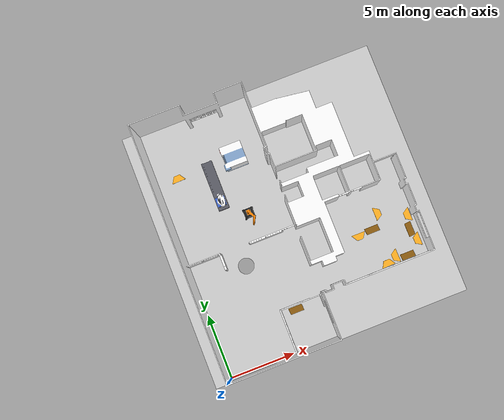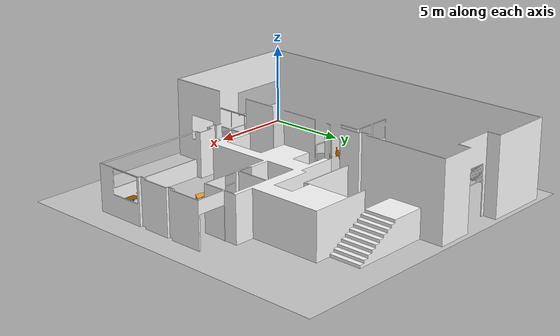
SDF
<?xml version="1.0" ?>
<sdf version="1.6">

    <world name="default">
        <include>
        	<uri>model://sun</uri>
        </include>

        <include>
		<static>true</static>
        	<uri>model://labfabex_ground</uri>
        </include>
        <include>
		<static>true</static>
        	<uri>model://labfabex</uri>
        </include>

	<model name="leadwell">
		<include>
			<static>true</static>
			<uri>model://leadwell</uri>
			<pose>4.4 9.8 0.0 0.0 0.0 1.570796</pose>
		</include>
	</model>

	<model name="scara">
		<include>
			<static>true</static>
			<uri>model://scara</uri>
			<pose>5.7 11.0 0.0 0.0 0.0 1.570796</pose>
		</include>
	</model>
	<model name="motoman">
		<include>
			<static>true</static>
			<uri>model://motoman</uri>
			<pose>4.4 10.5 0.0 0.0 0.0 1.570796</pose>
		</include>
	</model>
	<model name="muebles">
		<include>
			<static>true</static>
			<uri>model://muebles</uri>
			<pose>10.75 7.25 0.0 0.0 0.0 1.570796</pose>
		</include>
	</model>

    <physics name='default_physics' default='0' type='ode'>
      <ode>
        <solver>
          <type>quick</type>
          <iters>500</iters>
          <friction_model>cone_model</friction_model>
          <sor>1.3</sor>
          <use_dynamic_moi_rescaling>0</use_dynamic_moi_rescaling>
        </solver>
      </ode>
      <max_step_size>0.0125</max_step_size>
      <real_time_factor>1</real_time_factor>
      <real_time_update_rate>80</real_time_update_rate>
    </physics>

    </world>
</sdf>

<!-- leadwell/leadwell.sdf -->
<sdf version='1.4'>
  <model name="leadwell">
    <static>true</static>
    <link name='base_link'>
      <pose>0 0 0 0 0 0</pose>
      <collision name='collision'>
        <geometry>
          <mesh>
            <uri>model://leadwell/meshes/centromecan.dae</uri>
          </mesh>
        </geometry>
      </collision>
      <visual name='visual'>
        <geometry>
          <mesh>
            <uri>model://leadwell/meshes/centromecan.dae</uri>
          </mesh>
        </geometry>
      </visual>
    </link>
  </model>
</sdf>

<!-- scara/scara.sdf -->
<sdf version='1.4'>

  <model name="scara">
    <static>true</static>
    <link name='base_link'>
      <pose>0 0 0.5 0 0 0</pose>
      <collision name='collision'>
        <geometry>
          <mesh>
            <uri>model://scara/meshes/scara.dae</uri>
          </mesh>
        </geometry>
      </collision>
      <visual name='visual'>
        <geometry>
          <mesh>
            <uri>model://scara/meshes/scara.dae</uri>
          </mesh>
        </geometry>
      </visual>
    </link>
  </model>
</sdf>

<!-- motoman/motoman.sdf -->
<sdf version='1.4'>

  <model name="motoman">
    <static>true</static>
    <link name='base_link'>
      <pose>0 0 0.5 0 0 0</pose>
      <collision name='collision'>
        <geometry>
          <mesh>
            <uri>model://motoman/meshes/motoman.dae</uri>
          </mesh>
        </geometry>
      </collision>
      <visual name='visual'>
        <geometry>
          <mesh>
            <uri>model://motoman/meshes/motoman.dae</uri>
          </mesh>
        </geometry>
      </visual>
    </link>
  </model>
</sdf>

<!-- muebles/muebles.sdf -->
<sdf version='1.6'>
  <model name='muebles'>
    <static> true </static>
    <link name='mesa_circular'>
      <pose frame=''>3.3 8.5 0 0 -0 0</pose>
      <visual name='visual'>
        <geometry>
          <mesh>
            <uri>model://muebles/meshes/mesacircular.dae</uri>
          </mesh>
        </geometry>
        <material>
          <lighting>1</lighting>
          <script>
            <uri>file://media/materials/scripts/gazebo.material</uri>
            <name>Gazebo/Grey</name>
          </script>
        </material>
      </visual>
      <collision name='collision'>
        <geometry>
          <mesh>
            <uri>model://muebles/meshes/mesacuadrada.dae</uri>
          </mesh>
        </geometry>
      </collision>
    </link>
    <link name='mesa_cuadrada_1'>
      <pose frame=''>-4.2 4.18832 0 0 -0 0</pose>
      <visual name='visual'>
        <geometry>
          <mesh>
            <uri>model://muebles/meshes/mesacuadrada.dae</uri>
          </mesh>
        </geometry>
      </visual>
      <collision name='collision'>
        <geometry>
          <mesh>
            <uri>model://muebles/meshes/mesacuadrada.dae</uri>
          </mesh>
        </geometry>
      </collision>
    </link>
    <link name='mesa_caudrada_2'>
      <pose frame=''>-0.7 -3.4 0 0 -0 0</pose>
      <visual name='visual'>
        <geometry>
          <mesh>
            <uri>model://muebles/meshes/mesacuadrada.dae</uri>
          </mesh>
        </geometry>
      </visual>
      <collision name='collision'>
        <geometry>
          <mesh>
            <uri>model://muebles/meshes/mesacuadrada.dae</uri>
          </mesh>
        </geometry>
      </collision>
    </link>
    <link name='mesa_caudrada_3'>
      <pose frame=''>-3.5 -5.2 0 0 -0 0</pose>
      <visual name='visual'>
        <geometry>
          <mesh>
            <uri>model://muebles/meshes/mesacuadrada.dae</uri>
          </mesh>
        </geometry>
      </visual>
      <collision name='collision'>
        <geometry>
          <mesh>
            <uri>model://muebles/meshes/mesacuadrada.dae</uri>
          </mesh>
        </geometry>
      </collision>
    </link>
    <link name='mesa_caudrada_4'>
      <pose frame=''>-1.91014 -5.94288 0 0 0 -1.56325</pose>
      <visual name='visual'>
        <geometry>
          <mesh>
            <uri>model://muebles/meshes/mesacuadrada.dae</uri>
          </mesh>
        </geometry>
      </visual>
      <collision name='collision'>
        <geometry>
          <mesh>
            <uri>model://muebles/meshes/mesacuadrada.dae</uri>
          </mesh>
        </geometry>
      </collision>
    </link>
    <link name='mesa_triangular'>
      <pose frame=''>-2.51014 -5.94288 0 0 0 -1.56325</pose>
      <visual name='visual'>
        <geometry>
          <mesh>
            <uri>model://muebles/meshes/mesatriangular.dae</uri>
          </mesh>
        </geometry>
      </visual>
      <collision name='collision'>
        <geometry>
          <mesh>
            <uri>model://muebles/meshes/mesatriangular.dae</uri>
          </mesh>
        </geometry>
      </collision>
    </link>
    <link name='mesa_triangular_1'>
      <pose frame=''>-1.05359 -1.94449 0 0 -0 0</pose>
      <visual name='visual'>
        <geometry>
          <mesh>
            <uri>model://muebles/meshes/mesatriangular.dae</uri>
          </mesh>
        </geometry>
      </visual>
      <collision name='collision'>
        <geometry>
          <mesh>
            <uri>model://muebles/meshes/mesatriangular.dae</uri>
          </mesh>
        </geometry>
      </collision>
    </link>
    <link name='mesa_triangular_2'>
      <pose frame=''>0.124565 -4.2384 0 0 -0 1.58594</pose>
      <visual name='visual'>
        <geometry>
          <mesh>
            <uri>model://muebles/meshes/mesatriangular.dae</uri>
          </mesh>
        </geometry>
      </visual>
      <collision name='collision'>
        <geometry>
          <mesh>
            <uri>model://muebles/meshes/mesatriangular.dae</uri>
          </mesh>
        </geometry>
      </collision>
    </link>
    <link name='mesa_triangular_3'>
      <pose frame=''>8.5 9 0 0 0 -3.11436</pose>
      <visual name='visual'>
        <geometry>
          <mesh>
            <uri>model://muebles/meshes/mesatriangular.dae</uri>
          </mesh>
        </geometry>
      </visual>
      <collision name='collision'>
        <geometry>
          <mesh>
            <uri>model://muebles/meshes/mesatriangular.dae</uri>
          </mesh>
        </geometry>
      </collision>
    </link>
    <link name='mesa_triangular_4'>
      <pose frame=''>-3.34568 -3.51712 0 0 0 -3.11436</pose>
      <visual name='visual'>
        <geometry>
          <mesh>
            <uri>model://muebles/meshes/mesatriangular.dae</uri>
          </mesh>
        </geometry>
      </visual>
      <collision name='collision'>
        <geometry>
          <mesh>
            <uri>model://muebles/meshes/mesatriangular.dae</uri>
          </mesh>
        </geometry>
      </collision>
    </link>
    <link name='mesa_tirangular_5'>
      <pose frame=''>-3.09544 -3.91124 0 0 0 -1.5477</pose>
      <visual name='visual'>
        <geometry>
          <mesh>
            <uri>model://muebles/meshes/mesatriangular.dae</uri>
          </mesh>
        </geometry>
      </visual>
      <collision name='collision'>
        <geometry>
          <mesh>
            <uri>model://muebles/meshes/mesacircular.dae</uri>
          </mesh>
        </geometry>
      </collision>
    </link>
    <link name='mesa_triangular_6'>
      <pose frame=''>-0.51014 -5.94288 0 0 0 -1.56325</pose>
      <visual name='visual'>
        <geometry>
          <mesh>
            <uri>model://muebles/meshes/mesatriangular.dae</uri>
          </mesh>
        </geometry>
      </visual>
      <collision name='collision'>
        <geometry>
          <mesh>
            <uri>model://muebles/meshes/mesatriangular.dae</uri>
          </mesh>
        </geometry>
      </collision>
    </link>
  </model>
</sdf>

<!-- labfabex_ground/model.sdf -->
<sdf version="1.5">
  <model name='labfabex_ground'>

    <static>1</static>
    <link name='link'>
      <pose>8.80372 9.854326 0.0 0.0 0.0 1.57079</pose>
      <collision name='collision'>
        <geometry>
          <plane>
            <normal>0 0 1</normal>
            <size>20.4 20.4</size>
          </plane>
        </geometry>

        <surface>
          <friction>
            <ode>
              <mu>100</mu>
              <mu2>50</mu2>
            </ode>
          </friction>
          <bounce/>
          <contact>
            <ode/>
          </contact>
        </surface>

      </collision>

      <visual name='visual'>
        <cast_shadows>0</cast_shadows>

        <geometry>
          <plane>
            <normal>0 0 1</normal>
            <size>20.4 20.4</size>
          </plane>
        </geometry>

        <material>
          <script>
            <uri>model://labfabex_ground/materials/scripts</uri>
            <uri>model://labfabex_ground/materials/textures</uri>
            <name>map</name>
          </script>
        </material>

      </visual>

      <velocity_decay>
        <linear>0</linear>
        <angular>0</angular>
      </velocity_decay>
      <self_collide>0</self_collide>
      <kinematic>0</kinematic>
      <gravity>1</gravity>

    </link>
  </model>

</sdf>

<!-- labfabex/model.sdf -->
<sdf version="1.5">
  <model name="labfabex">

    <!-- Model Link  -->
    <link name="base">
      <pose>0 0 0 0 0 3.14159</pose>

      <collision name="collision">
        <geometry>
          <mesh>
            <uri>model://labfabex/meshes/labfabex_walls.dae</uri>
          </mesh>
        </geometry>
      </collision>

      <visual name="visual">
        <geometry>
          <mesh>
            <uri>model://labfabex/meshes/labfabex_walls.dae</uri>
          </mesh>
        </geometry>

        <material>
          <script>
            <uri>model://labfabex/materials/textures</uri>
            <uri>model://labfabex/materials/scripts</uri>
            <name>labfabex/texture</name>
          </script>

          <shader type = 'vertex'>
            <normal_map>__default__</normal_map>
          </shader>
          <ambient>1 1 1 1</ambient>
          <diffuse>1 1 1 1</diffuse>
          <specular>1 1 1 1</specular>
          <emissive>0 0 0 1</emissive>
        </material>

      </visual>

    </link>
  </model>
</sdf>
